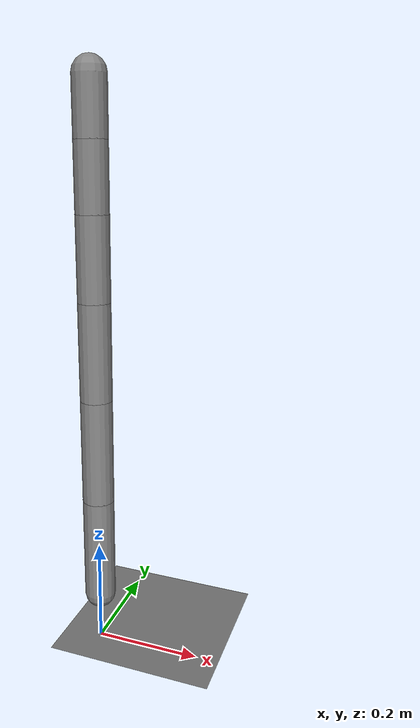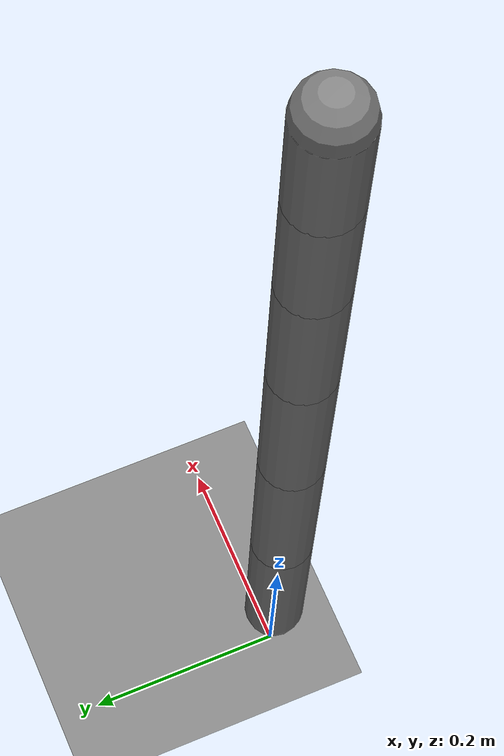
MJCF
<mujoco model="six_link_arm">
  <compiler angle="degree"/>
  <option timestep="0.01"/>
  <asset>
    <texture name="texgrid" type="2d" builtin="checker" rgb1="0.8 0.8 0.8" rgb2="0.2 0.2 0.2" width="512" height="512"/>
    <material name="mat" texture="texgrid" texrepeat="1 1"/>
  </asset>
  <worldbody>
    <geom name="floor" type="plane" pos="0 0 0" size="10 10 0.1" material="mat"/>
    <body name="base" pos="0 0 0.1">
      <!-- Link 1 -->
      <body name="link1" pos="0 0 0">
        <joint name="joint1" type="hinge" axis="0 0 1" pos="0 0 0" range="-180 180"/>
        <geom name="geom1" type="capsule" fromto="0 0 0 0 0 0.2" size="0.03"/>
        <!-- Link 2 -->
        <body name="link2" pos="0 0 0.2">
          <joint name="joint2" type="hinge" axis="0 1 0" pos="0 0 0" range="-180 180"/>
          <geom name="geom2" type="capsule" fromto="0 0 0 0 0 0.2" size="0.03"/>
          <!-- Link 3 -->
          <body name="link3" pos="0 0 0.2">
            <joint name="joint3" type="hinge" axis="0 0 1" pos="0 0 0" range="-180 180"/>
            <geom name="geom3" type="capsule" fromto="0 0 0 0 0 0.18" size="0.03"/>
            <!-- Link 4 -->
            <body name="link4" pos="0 0 0.18">
              <joint name="joint4" type="hinge" axis="0 1 0" pos="0 0 0" range="-180 180"/>
              <geom name="geom4" type="capsule" fromto="0 0 0 0 0 0.15" size="0.03"/>
              <!-- Link 5 -->
              <body name="link5" pos="0 0 0.15">
                <joint name="joint5" type="hinge" axis="0 0 1" pos="0 0 0" range="-180 180"/>
                <geom name="geom5" type="capsule" fromto="0 0 0 0 0 0.12" size="0.03"/>
                <!-- Link 6 -->
                <body name="link6" pos="0 0 0.12">
                  <joint name="joint6" type="hinge" axis="0 1 0" pos="0 0 0" range="-180 180"/>
                  <geom name="geom6" type="capsule" fromto="0 0 0 0 0 0.1" size="0.03"/>
                  <site name="ee" pos="0 0 0.1" size="0.02"/>
                </body>
              </body>
            </body>
          </body>
        </body>
      </body>
    </body>
  </worldbody>
  <actuator>
    <position name="a1" joint="joint1" kp="200"/>
    <position name="a2" joint="joint2" kp="200"/>
    <position name="a3" joint="joint3" kp="200"/>
    <position name="a4" joint="joint4" kp="200"/>
    <position name="a5" joint="joint5" kp="200"/>
    <position name="a6" joint="joint6" kp="200"/>
  </actuator>
  <visual>
    <map znear="0.01"/>
    <global offwidth="800" offheight="600"/>
    <camera name="cam" pos="0 -1 0.6" xyaxes="1 0 0 0 0 1"/>
  </visual>
</mujoco>
